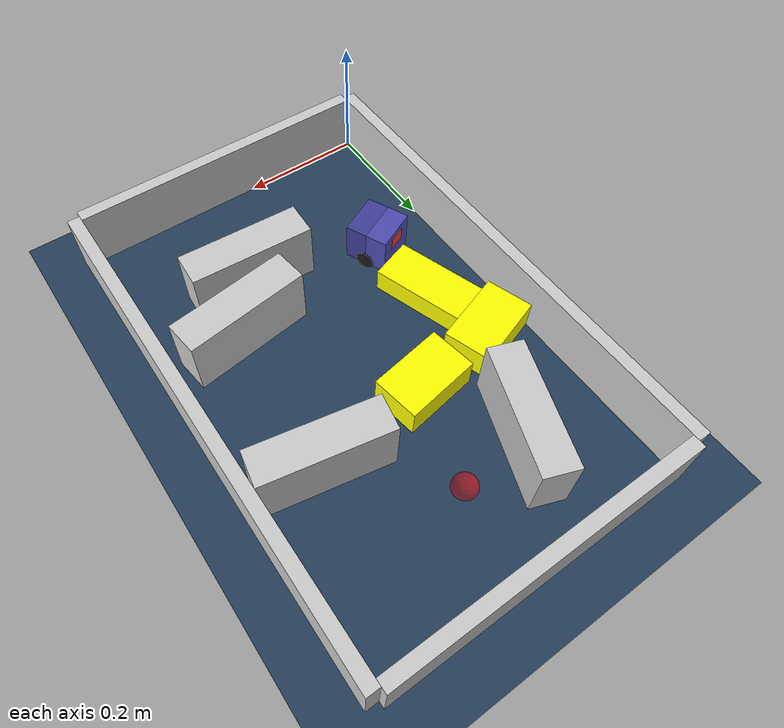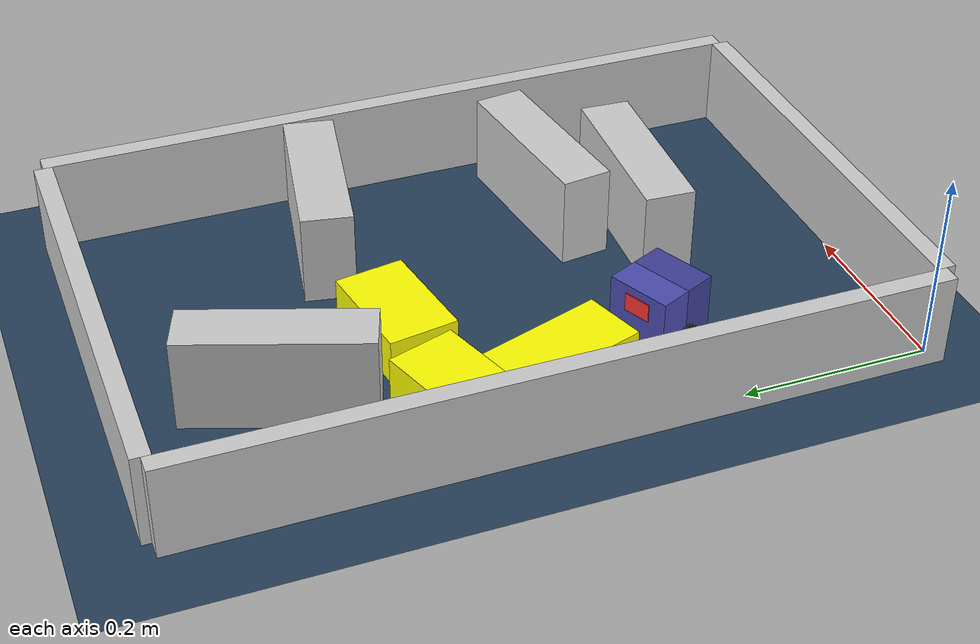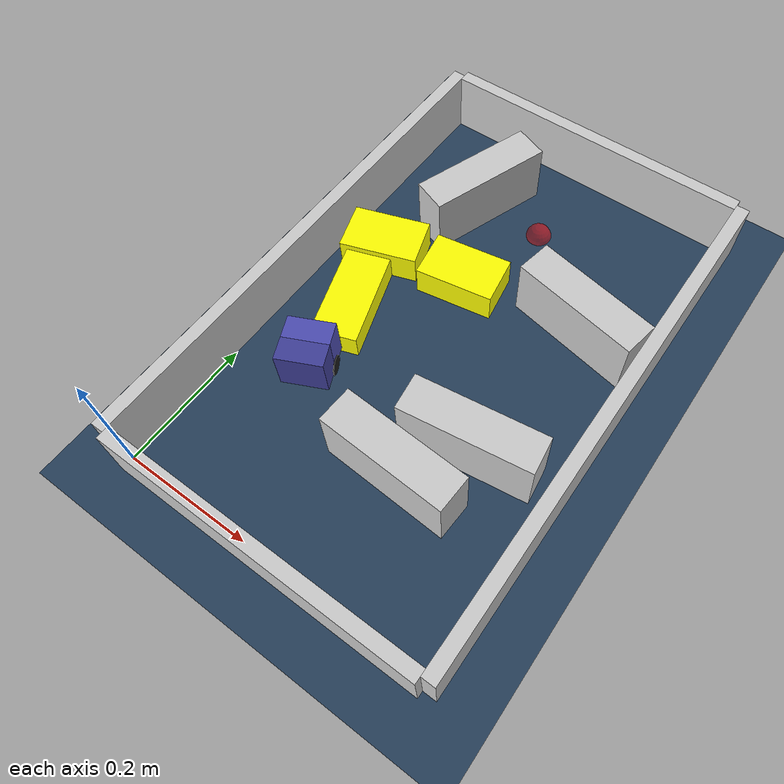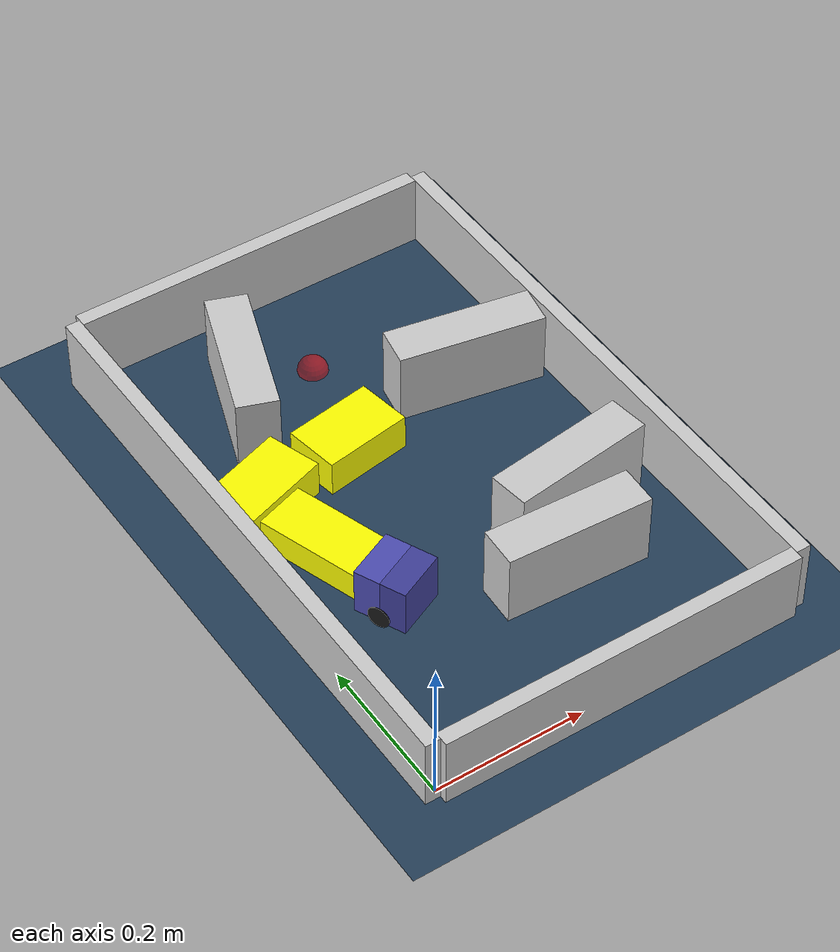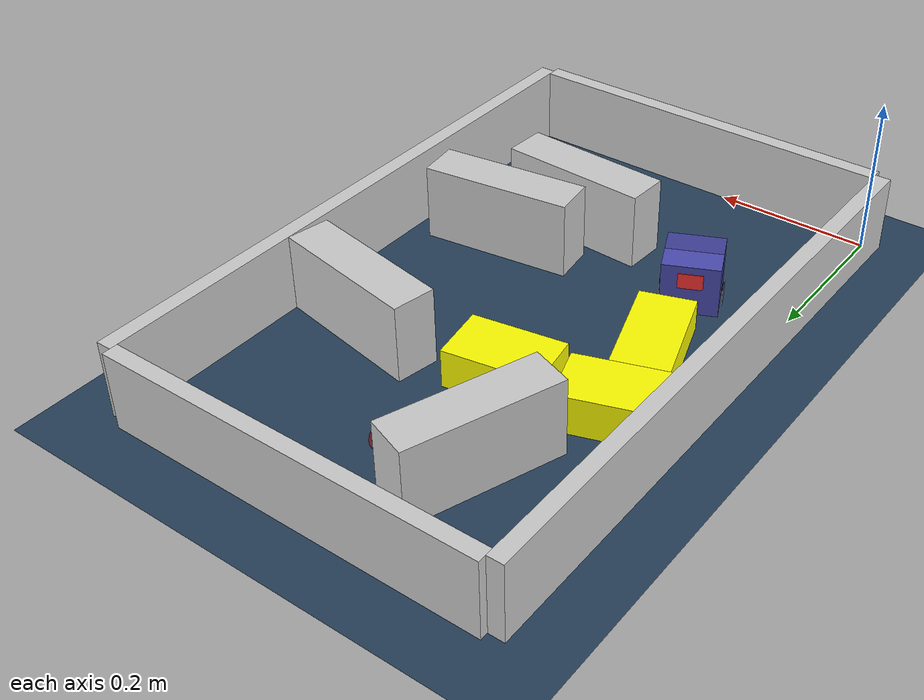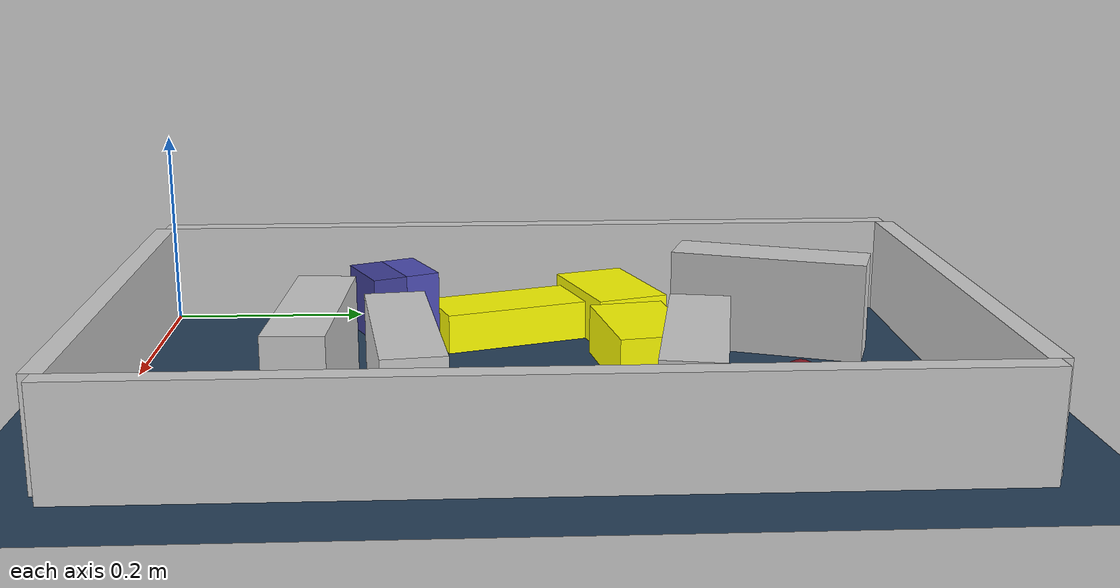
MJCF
<?xml version='1.0' encoding='utf-8'?>
<mujoco model="real_buildable">
  <compiler angle="degree" />
  <option timestep="0.002" integrator="implicitfast" iterations="100" cone="elliptic" />
  <default>
    <geom density="1" />
  </default>
  <asset>
    <texture builtin="gradient" height="3072" rgb1="0.3 0.5 0.7" rgb2="0 0 0" type="skybox" width="512" />
    <texture builtin="checker" height="300" mark="edge" markrgb="0.8 0.8 0.8" name="groundplane" rgb1="0.2 0.3 0.4" rgb2="0.1 0.2 0.3" type="2d" width="300" />
    <material name="groundplane" reflectance="0.2" texrepeat="5 5" texture="groundplane" texuniform="true" />
  </asset>
  <worldbody>
    <light dir="0 0 -1" directional="true" pos="0 0 1.5" />
    <geom name="floor" type="plane" condim="4" friction="0.5 0.005 0.001" material="groundplane" size="0 0 0.05" />
    <body name="walls">
      <geom name="wall_boundary_left" type="box" condim="4" friction="1.0 0.005 0.0001" rgba="0.8 0.8 0.8 1" pos="-0.010000 0.387500 0.050000" euler="0 0 0.000000" size="0.010000 0.397500 0.050000" />
      <geom name="wall_boundary_right" type="box" condim="4" friction="1.0 0.005 0.0001" rgba="0.8 0.8 0.8 1" pos="0.500000 0.387500 0.050000" euler="0 0 0.000000" size="0.010000 0.397500 0.050000" />
      <geom name="wall_boundary_bottom" type="box" condim="4" friction="1.0 0.005 0.0001" rgba="0.8 0.8 0.8 1" pos="0.245000 -0.010000 0.050000" euler="0 0 0.000000" size="0.245000 0.010000 0.050000" />
      <geom name="wall_boundary_top" type="box" condim="4" friction="1.0 0.005 0.0001" rgba="0.8 0.8 0.8 1" pos="0.245000 0.785000 0.050000" euler="0 0 0.000000" size="0.245000 0.010000 0.050000" />
      <geom name="wall_inner_1" type="box" condim="4" friction="1.0 0.005 0.0001" rgba="0.8 0.8 0.8 1" pos="0.307452 0.181307 0.050000" euler="0 0 -3.001577" size="0.097500 0.027500 0.050000" />
      <geom name="wall_inner_2" type="box" condim="4" friction="1.0 0.005 0.0001" rgba="0.8 0.8 0.8 1" pos="0.369012 0.266334 0.050000" euler="0 0 7.505534" size="0.097500 0.027500 0.050000" />
      <geom name="wall_inner_3" type="box" condim="4" friction="1.0 0.005 0.0001" rgba="0.8 0.8 0.8 1" pos="0.389000 0.514000 0.050000" euler="0 0 169.500000" size="0.097500 0.027500 0.050000" />
      <geom name="wall_inner_4" type="box" condim="4" friction="1.0 0.005 0.0001" rgba="0.8 0.8 0.8 1" pos="0.138000 0.629000 0.050000" euler="0 0 70.200000" size="0.097500 0.027500 0.050000" />
    </body>
    <body name="car" pos="0.10920413895349318 0.24403918676926478 0.01" quat="0.54110364160058055 0 0 0.84095591385434143">
      <freejoint name="car_freejoint" />
      <inertial pos="0 0 0.0375" mass="0.35" diaginertia="0.000266 0.000266 0.000286" />
      <geom name="front_chassis_collision" type="box" pos="0.0175 0 0.0375" size="0.0175 0.035 0.0325" rgba="0.3 0.3 0.7 1" />
      <geom name="rear_chassis_collision" type="box" pos="-0.0175 0 0.0375" size="0.0175 0.035 0.0325" rgba="0.25 0.25 0.6 1" />
      <geom name="front_marker" type="box" pos="0.034 0 0.0505" size="0.002 0.015 0.01" rgba="1 0.2 0.2 1" contype="0" conaffinity="0" />
      <body name="rear_support_body" pos="-0.03 0 0.0025">
        <joint name="rear_caster_joint" type="ball" damping="0.0001" />
        <inertial pos="0 0 0" mass="0.025" diaginertia="0.000001 0.000001 0.000001" />
        <geom name="rear_support" type="sphere" pos="0 0 0" size="0.0025" friction="0 0 0" rgba="0.7 0.1 0.1 1" />
      </body>
      <body name="front_support_body" pos="0.03 0 0.0025">
        <joint name="front_caster_joint" type="ball" damping="0.0001" />
        <inertial pos="0 0 0" mass="0.025" diaginertia="0.000001 0.000001 0.000001" />
        <geom name="front_support" type="sphere" pos="0 0 0" size="0.0025" friction="0 0 0" rgba="0.1 0.7 0.1 1" />
      </body>
      <body name="left_wheel" pos="0 0.0375 0.015">
        <inertial pos="0 0 0" mass="0.05" diaginertia="0.000003 0.000006 0.000003" />
        <joint name="left_wheel_joint" type="hinge" axis="0 1 0" damping="0.01" armature="0.0001" />
        <geom name="left_wheel_collision" type="cylinder" size="0.015 0.0005" euler="90 0 0" rgba="0.1 0.1 0.1 1" />
      </body>
      <body name="right_wheel" pos="0 -0.0375 0.015">
        <inertial pos="0 0 0" mass="0.05" diaginertia="0.000003 0.000006 0.000003" />
        <joint name="right_wheel_joint" type="hinge" axis="0 1 0" damping="0.01" armature="0.0001" />
        <geom name="right_wheel_collision" type="cylinder" size="0.015 0.0005" euler="90 0 0" rgba="0.1 0.1 0.1 1" />
      </body>
    </body>
    <body name="obstacle_0_movable">
      <geom name="obstacle_0_movable" condim="4" pos="0.09093049569355903 0.36053618546762911 0.02" friction="1 0.005 0.0001" rgba="1 1 0 1" size="0.035000 0.075000 0.020000" type="box" mass="0.1" quat="0.98716382229105504 0 0 0.15971095128297977" />
      <joint type="free" />
    </body>
    <body name="obstacle_1_movable">
      <geom name="obstacle_1_movable" condim="4" pos="0.20200000000000007 0.4899999999999991 0.025000000000000001" friction="1 0.005 0.0001" rgba="1 1 0 1" size="0.037500 0.060000 0.025000" type="box" mass="0.1" quat="0.76210360880373784 0 0 -0.64745508681940189" />
      <joint type="free" />
    </body>
    <body name="obstacle_2_movable">
      <geom name="obstacle_2_movable" condim="4" pos="0.06875649356720126 0.47173206639476217 0.025000000000000001" friction="1 0.005 0.0001" rgba="1 1 0 1" size="0.037500 0.060000 0.025000" type="box" mass="0.1" quat="0.58494093351119747 0 0 0.81107589305998296" />
      <joint type="free" />
    </body>
    <site name="goal" type="sphere" pos="0.245000 0.640000 0.0" size="0.02" rgba="1 0 0 0.5" />
  </worldbody>
  <actuator>
    <velocity name="left_wheel_drive" joint="left_wheel_joint" ctrlrange="-25 25" kv="0.75" forcerange="-0.5 0.5" />
    <velocity name="right_wheel_drive" joint="right_wheel_joint" ctrlrange="-25 25" kv="0.75" forcerange="-0.5 0.5" />
  </actuator>
</mujoco>
